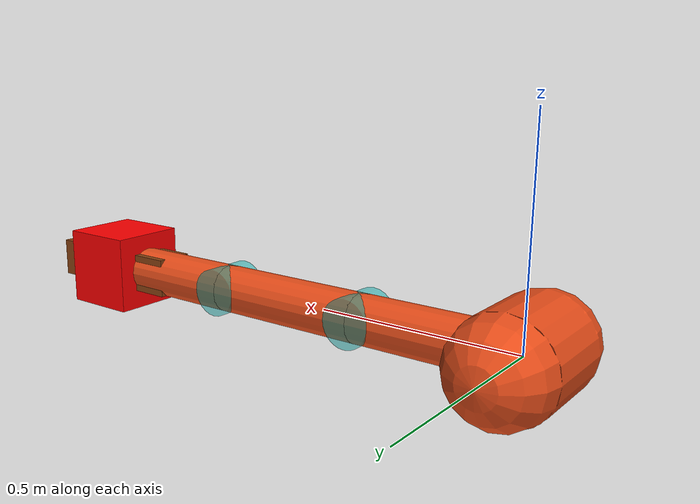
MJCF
<mujoco model="arm3d">
    <compiler inertiafromgeom="true" angle="radian" coordinate="local" />
    <option timestep="0.01" gravity="0 0 0" iterations="20" integrator="Euler" />
    <visual>
        <headlight diffuse=".7 .7 .7"/>
    </visual>
    <default>
        <joint armature='0.04' damping="1" limited="true"/>
        <geom rgba=".9 .3 .1 1" friction=".8 .1 .1" density="300" margin="0.002" condim="1" contype="1" conaffinity="1"/>
    </default>a

    <worldbody>
        <body name="palm" pos="0 0 0">
            <geom type="capsule" fromto="0 -0.1 0 0 0.1 0" size="0.12"/>

            <body name="proximal_1" pos="0 0 0">
                <joint name="proximal_j_1" type="hinge" pos="0 0 0" axis="0 1 0" range="-1.57 1.57" damping="1.0" />
                <geom type="capsule"  fromto="0 0 0 0.4 0 0" size="0.06" contype="1" conaffinity="1"/>
                <body name="distal_1" pos="0.4 0 0">
                    <geom name="DIP_wrap1"  type="cylinder" pos="0 0 0"
                    zaxis="0 1 0" size="0.06 0.06" rgba="0 .7 .7 .5"/>
                    <joint name="distal_j_1" type="hinge" pos="0 0 0" axis="0 1 0" range="-1.57 1.57" damping="1.0"/>
                    <geom type="capsule"  fromto="0 0 0 0.4 0 0" size="0.06" contype="1" conaffinity="1"/>
                    <body name="distal_2" pos="0.4 0 0">
                        <geom name="DIP_wrap2"  type="cylinder" pos="0 0 0"
                        zaxis="0 1 0" size="0.06 0.06" rgba="0 .7 .7 .5"/>
                        <joint name="distal_j_2" type="hinge" pos="0 0 0" axis="0 1 0" range="-1.57 1.57" damping="1.0"/>
                        <geom type="capsule" fromto="0 0 0 0.5 0 0" size="0.06" contype="1" conaffinity="1"/>
                        <body name="distal_4" pos="0.4 0 0">
                            <site name="tip arm" pos="0 0 0" size="0.01" />
                        </body>
                    </body>
                </body>
            </body>
        </body>
        <body name="object" pos="1.2 0.0 0.0">
            <geom rgba="0.54 0.26 0.07 1" type="box" size="0.2 0.05 0.05" density='10' contype="1" conaffinity="1"/>
            <joint name="obj_slidez" type="slide" pos="0.1 0.025 0.025" axis="0 0 1" range="-0.6 0.6" damping="0.5"/>
            <body name="distal_10" pos="0 0 0">
                <site name="obj_pos" pos="0.1 0.025 0.025" size="0.01" />
            </body>
        </body>
        <body name="goal" pos="1.2 0 0">
            <geom rgba="1. 0. 0. 1" type="box" size="0.1 0.1 0.1" density='0.00001' contype="0" conaffinity="0"/>
            <body name="distal_11" pos="0 0 0">
                <site name="goal_pos" pos="0.05 0.05 0.05" size="0.01" />
            </body>
        </body>
    </worldbody>

    <actuator>
        <motor joint="proximal_j_1" ctrlrange="-2 2" ctrllimited="true"/>
        <motor joint="distal_j_1" ctrlrange="-2 2" ctrllimited="true"/>
        <motor joint="distal_j_2" ctrlrange="-2 2" ctrllimited="true"/>
    </actuator>
</mujoco>
